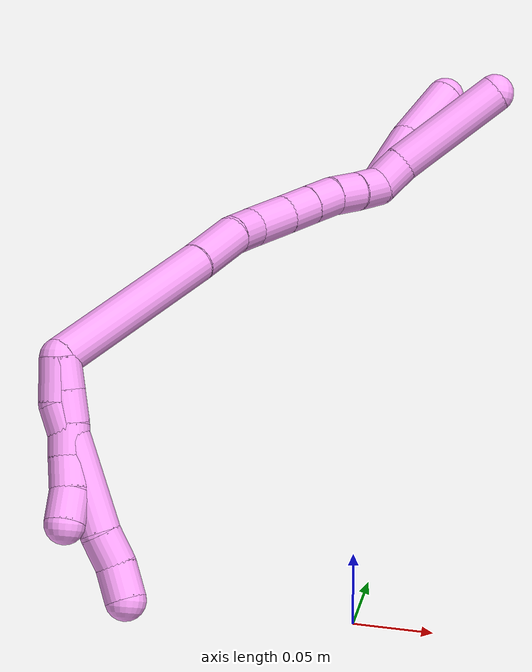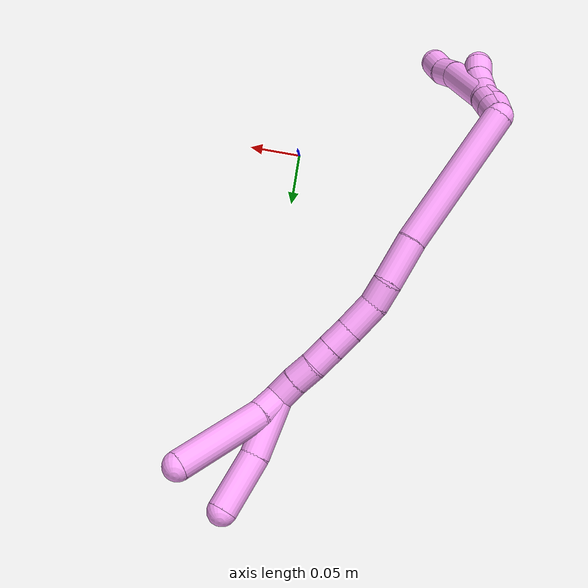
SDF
<sdf version="1.7">
 <world name="default">
  <model name="4">
   <static>0</static>
   <link name="4">
    <collision name="collision-cylinder-e_1_2_8">
     <pose>0.00077 0.000493 -0.013422 -3.1049 0.05724 -2.00172</pose>
     <geometry><cylinder><radius>0.0125</radius><length>0.026906</length></cylinder></geometry>
     <surface>
      <friction><ode><mu>1.16</mu><mu2>1.16</mu2><slip1>0</slip1><slip2>0</slip2></ode></friction>
      <contact><ode><kp>1e+06</kp><kd>1</kd><max_vel>0</max_vel><min_depth>0.001</min_depth></ode></contact>
     </surface>
    </collision>
    <visual name="visual-cylinder-e_1_2_8">
     <pose>0.00077 0.000493 -0.013422 -3.1049 0.05724 -2.00172</pose>
     <geometry><cylinder><radius>0.0125</radius><length>0.026906</length></cylinder></geometry>
     <material><ambient>1 0.65098 0.996078 1</ambient></material>
    </visual>
    <collision name="collision-cylinder-e_2_8_9">
     <pose>0.015117 0.008352 -0.064074 -2.94624 0.343584 -2.11339</pose>
     <geometry><cylinder><radius>0.0125</radius><length>0.080615</length></cylinder></geometry>
     <surface>
      <friction><ode><mu>1.16</mu><mu2>1.16</mu2><slip1>0</slip1><slip2>0</slip2></ode></friction>
      <contact><ode><kp>1e+06</kp><kd>1</kd><max_vel>0</max_vel><min_depth>0.001</min_depth></ode></contact>
     </surface>
    </collision>
    <visual name="visual-cylinder-e_2_8_9">
     <pose>0.015117 0.008352 -0.064074 -2.94624 0.343584 -2.11339</pose>
     <geometry><cylinder><radius>0.0125</radius><length>0.080615</length></cylinder></geometry>
     <material><ambient>1 0.65098 0.996078 1</ambient></material>
    </visual>
    <collision name="collision-cylinder-e_3_9_10">
     <pose>0.032624 0.019477 -0.110202 -2.74202 0.386261 -1.53602</pose>
     <geometry><cylinder><radius>0.0125</radius><length>0.020855</length></cylinder></geometry>
     <surface>
      <friction><ode><mu>1.16</mu><mu2>1.16</mu2><slip1>0</slip1><slip2>0</slip2></ode></friction>
      <contact><ode><kp>1e+06</kp><kd>1</kd><max_vel>0</max_vel><min_depth>0.001</min_depth></ode></contact>
     </surface>
    </collision>
    <visual name="visual-cylinder-e_3_9_10">
     <pose>0.032624 0.019477 -0.110202 -2.74202 0.386261 -1.53602</pose>
     <geometry><cylinder><radius>0.0125</radius><length>0.020855</length></cylinder></geometry>
     <material><ambient>1 0.65098 0.996078 1</ambient></material>
    </visual>
    <collision name="collision-cylinder-e_4_10_6">
     <pose>0.040216 0.024455 -0.129199 -3.02135 0.345664 -2.47751</pose>
     <geometry><cylinder><radius>0.0125</radius><length>0.021624</length></cylinder></geometry>
     <surface>
      <friction><ode><mu>1.16</mu><mu2>1.16</mu2><slip1>0</slip1><slip2>0</slip2></ode></friction>
      <contact><ode><kp>1e+06</kp><kd>1</kd><max_vel>0</max_vel><min_depth>0.001</min_depth></ode></contact>
     </surface>
    </collision>
    <visual name="visual-cylinder-e_4_10_6">
     <pose>0.040216 0.024455 -0.129199 -3.02135 0.345664 -2.47751</pose>
     <geometry><cylinder><radius>0.0125</radius><length>0.021624</length></cylinder></geometry>
     <material><ambient>1 0.65098 0.996078 1</ambient></material>
    </visual>
    <collision name="collision-cylinder-e_1_2_11">
     <pose>0.001843 0.001129 -0.009764 -3.02648 0.185349 -2.03167</pose>
     <geometry><cylinder><radius>0.0125</radius><length>0.02</length></cylinder></geometry>
     <surface>
      <friction><ode><mu>1.16</mu><mu2>1.16</mu2><slip1>0</slip1><slip2>0</slip2></ode></friction>
      <contact><ode><kp>1e+06</kp><kd>1</kd><max_vel>0</max_vel><min_depth>0.001</min_depth></ode></contact>
     </surface>
    </collision>
    <visual name="visual-cylinder-e_1_2_11">
     <pose>0.001843 0.001129 -0.009764 -3.02648 0.185349 -2.03167</pose>
     <geometry><cylinder><radius>0.0125</radius><length>0.02</length></cylinder></geometry>
     <material><ambient>1 0.65098 0.996078 1</ambient></material>
    </visual>
    <collision name="collision-cylinder-e_2_11_12">
     <pose>0.005597 0.003308 -0.029287 -3.03437 0.192347 -2.12632</pose>
     <geometry><cylinder><radius>0.0125</radius><length>0.02</length></cylinder></geometry>
     <surface>
      <friction><ode><mu>1.16</mu><mu2>1.16</mu2><slip1>0</slip1><slip2>0</slip2></ode></friction>
      <contact><ode><kp>1e+06</kp><kd>1</kd><max_vel>0</max_vel><min_depth>0.001</min_depth></ode></contact>
     </surface>
    </collision>
    <visual name="visual-cylinder-e_2_11_12">
     <pose>0.005597 0.003308 -0.029287 -3.03437 0.192347 -2.12632</pose>
     <geometry><cylinder><radius>0.0125</radius><length>0.02</length></cylinder></geometry>
     <material><ambient>1 0.65098 0.996078 1</ambient></material>
    </visual>
    <collision name="collision-cylinder-e_3_12_13">
     <pose>0.008641 0.004235 -0.048981 3.12914 0.113468 2.92328</pose>
     <geometry><cylinder><radius>0.0125</radius><length>0.02</length></cylinder></geometry>
     <surface>
      <friction><ode><mu>1.16</mu><mu2>1.16</mu2><slip1>0</slip1><slip2>0</slip2></ode></friction>
      <contact><ode><kp>1e+06</kp><kd>1</kd><max_vel>0</max_vel><min_depth>0.001</min_depth></ode></contact>
     </surface>
    </collision>
    <visual name="visual-cylinder-e_3_12_13">
     <pose>0.008641 0.004235 -0.048981 3.12914 0.113468 2.92328</pose>
     <geometry><cylinder><radius>0.0125</radius><length>0.02</length></cylinder></geometry>
     <material><ambient>1 0.65098 0.996078 1</ambient></material>
    </visual>
    <collision name="collision-cylinder-e_4_13_14">
     <pose>0.012047 0.002908 -0.068579 3.01767 0.229357 2.15346</pose>
     <geometry><cylinder><radius>0.0125</radius><length>0.02</length></cylinder></geometry>
     <surface>
      <friction><ode><mu>1.16</mu><mu2>1.16</mu2><slip1>0</slip1><slip2>0</slip2></ode></friction>
      <contact><ode><kp>1e+06</kp><kd>1</kd><max_vel>0</max_vel><min_depth>0.001</min_depth></ode></contact>
     </surface>
    </collision>
    <visual name="visual-cylinder-e_4_13_14">
     <pose>0.012047 0.002908 -0.068579 3.01767 0.229357 2.15346</pose>
     <geometry><cylinder><radius>0.0125</radius><length>0.02</length></cylinder></geometry>
     <material><ambient>1 0.65098 0.996078 1</ambient></material>
    </visual>
    <collision name="collision-cylinder-e_5_14_5">
     <pose>0.015015 -0.000779 -0.087904 2.89001 0.069454 0.536212</pose>
     <geometry><cylinder><radius>0.0125</radius><length>0.02</length></cylinder></geometry>
     <surface>
      <friction><ode><mu>1.16</mu><mu2>1.16</mu2><slip1>0</slip1><slip2>0</slip2></ode></friction>
      <contact><ode><kp>1e+06</kp><kd>1</kd><max_vel>0</max_vel><min_depth>0.001</min_depth></ode></contact>
     </surface>
    </collision>
    <visual name="visual-cylinder-e_5_14_5">
     <pose>0.015015 -0.000779 -0.087904 2.89001 0.069454 0.536212</pose>
     <geometry><cylinder><radius>0.0125</radius><length>0.02</length></cylinder></geometry>
     <material><ambient>1 0.65098 0.996078 1</ambient></material>
    </visual>
    <collision name="collision-cylinder-e_1_2_15">
     <pose>0.011616 0.052665 0.035144 -0.982345 0.18145 -0.097247</pose>
     <geometry><cylinder><radius>0.0125</radius><length>0.128742</length></cylinder></geometry>
     <surface>
      <friction><ode><mu>1.16</mu><mu2>1.16</mu2><slip1>0</slip1><slip2>0</slip2></ode></friction>
      <contact><ode><kp>1e+06</kp><kd>1</kd><max_vel>0</max_vel><min_depth>0.001</min_depth></ode></contact>
     </surface>
    </collision>
    <visual name="visual-cylinder-e_1_2_15">
     <pose>0.011616 0.052665 0.035144 -0.982345 0.18145 -0.097247</pose>
     <geometry><cylinder><radius>0.0125</radius><length>0.128742</length></cylinder></geometry>
     <material><ambient>1 0.65098 0.996078 1</ambient></material>
    </visual>
    <collision name="collision-cylinder-e_2_15_16">
     <pose>0.025099 0.122118 0.08103 -1.00161 0.093405 -0.051151</pose>
     <geometry><cylinder><radius>0.0125</radius><length>0.040037</length></cylinder></geometry>
     <surface>
      <friction><ode><mu>1.16</mu><mu2>1.16</mu2><slip1>0</slip1><slip2>0</slip2></ode></friction>
      <contact><ode><kp>1e+06</kp><kd>1</kd><max_vel>0</max_vel><min_depth>0.001</min_depth></ode></contact>
     </surface>
    </collision>
    <visual name="visual-cylinder-e_2_15_16">
     <pose>0.025099 0.122118 0.08103 -1.00161 0.093405 -0.051151</pose>
     <geometry><cylinder><radius>0.0125</radius><length>0.040037</length></cylinder></geometry>
     <material><ambient>1 0.65098 0.996078 1</ambient></material>
    </visual>
    <collision name="collision-cylinder-e_3_16_17">
     <pose>0.02766 0.148686 0.095526 -1.20429 0.066116 -0.045449</pose>
     <geometry><cylinder><radius>0.0125</radius><length>0.020996</length></cylinder></geometry>
     <surface>
      <friction><ode><mu>1.16</mu><mu2>1.16</mu2><slip1>0</slip1><slip2>0</slip2></ode></friction>
      <contact><ode><kp>1e+06</kp><kd>1</kd><max_vel>0</max_vel><min_depth>0.001</min_depth></ode></contact>
     </surface>
    </collision>
    <visual name="visual-cylinder-e_3_16_17">
     <pose>0.02766 0.148686 0.095526 -1.20429 0.066116 -0.045449</pose>
     <geometry><cylinder><radius>0.0125</radius><length>0.020996</length></cylinder></geometry>
     <material><ambient>1 0.65098 0.996078 1</ambient></material>
    </visual>
    <collision name="collision-cylinder-e_4_17_18">
     <pose>0.032675 0.170958 0.105113 -1.1339 0.303713 -0.194252</pose>
     <geometry><cylinder><radius>0.0125</radius><length>0.028898</length></cylinder></geometry>
     <surface>
      <friction><ode><mu>1.16</mu><mu2>1.16</mu2><slip1>0</slip1><slip2>0</slip2></ode></friction>
      <contact><ode><kp>1e+06</kp><kd>1</kd><max_vel>0</max_vel><min_depth>0.001</min_depth></ode></contact>
     </surface>
    </collision>
    <visual name="visual-cylinder-e_4_17_18">
     <pose>0.032675 0.170958 0.105113 -1.1339 0.303713 -0.194252</pose>
     <geometry><cylinder><radius>0.0125</radius><length>0.028898</length></cylinder></geometry>
     <material><ambient>1 0.65098 0.996078 1</ambient></material>
    </visual>
    <collision name="collision-cylinder-e_5_18_19">
     <pose>0.040603 0.192385 0.115405 -1.10804 0.346642 -0.215782</pose>
     <geometry><cylinder><radius>0.0125</radius><length>0.021232</length></cylinder></geometry>
     <surface>
      <friction><ode><mu>1.16</mu><mu2>1.16</mu2><slip1>0</slip1><slip2>0</slip2></ode></friction>
      <contact><ode><kp>1e+06</kp><kd>1</kd><max_vel>0</max_vel><min_depth>0.001</min_depth></ode></contact>
     </surface>
    </collision>
    <visual name="visual-cylinder-e_5_18_19">
     <pose>0.040603 0.192385 0.115405 -1.10804 0.346642 -0.215782</pose>
     <geometry><cylinder><radius>0.0125</radius><length>0.021232</length></cylinder></geometry>
     <material><ambient>1 0.65098 0.996078 1</ambient></material>
    </visual>
    <collision name="collision-cylinder-e_6_19_20">
     <pose>0.047546 0.209808 0.123994 -1.11774 0.339738 -0.213715</pose>
     <geometry><cylinder><radius>0.0125</radius><length>0.020025</length></cylinder></geometry>
     <surface>
      <friction><ode><mu>1.16</mu><mu2>1.16</mu2><slip1>0</slip1><slip2>0</slip2></ode></friction>
      <contact><ode><kp>1e+06</kp><kd>1</kd><max_vel>0</max_vel><min_depth>0.001</min_depth></ode></contact>
     </surface>
    </collision>
    <visual name="visual-cylinder-e_6_19_20">
     <pose>0.047546 0.209808 0.123994 -1.11774 0.339738 -0.213715</pose>
     <geometry><cylinder><radius>0.0125</radius><length>0.020025</length></cylinder></geometry>
     <material><ambient>1 0.65098 0.996078 1</ambient></material>
    </visual>
    <collision name="collision-cylinder-e_7_20_21">
     <pose>0.054589 0.227193 0.130917 -1.26682 0.378349 -0.279372</pose>
     <geometry><cylinder><radius>0.0125</radius><length>0.02007</length></cylinder></geometry>
     <surface>
      <friction><ode><mu>1.16</mu><mu2>1.16</mu2><slip1>0</slip1><slip2>0</slip2></ode></friction>
      <contact><ode><kp>1e+06</kp><kd>1</kd><max_vel>0</max_vel><min_depth>0.001</min_depth></ode></contact>
     </surface>
    </collision>
    <visual name="visual-cylinder-e_7_20_21">
     <pose>0.054589 0.227193 0.130917 -1.26682 0.378349 -0.279372</pose>
     <geometry><cylinder><radius>0.0125</radius><length>0.02007</length></cylinder></geometry>
     <material><ambient>1 0.65098 0.996078 1</ambient></material>
    </visual>
    <collision name="collision-cylinder-e_8_21_1">
     <pose>0.061243 0.24511 0.136867 -1.23391 0.299133 -0.212969</pose>
     <geometry><cylinder><radius>0.0125</radius><length>0.020001</length></cylinder></geometry>
     <surface>
      <friction><ode><mu>1.16</mu><mu2>1.16</mu2><slip1>0</slip1><slip2>0</slip2></ode></friction>
      <contact><ode><kp>1e+06</kp><kd>1</kd><max_vel>0</max_vel><min_depth>0.001</min_depth></ode></contact>
     </surface>
    </collision>
    <visual name="visual-cylinder-e_8_21_1">
     <pose>0.061243 0.24511 0.136867 -1.23391 0.299133 -0.212969</pose>
     <geometry><cylinder><radius>0.0125</radius><length>0.020001</length></cylinder></geometry>
     <material><ambient>1 0.65098 0.996078 1</ambient></material>
    </visual>
    <collision name="collision-cylinder-e_1_1_22">
     <pose>0.063649 0.272372 0.157633 -0.803148 -0.021329 0.009058</pose>
     <geometry><cylinder><radius>0.0125</radius><length>0.050719</length></cylinder></geometry>
     <surface>
      <friction><ode><mu>1.16</mu><mu2>1.16</mu2><slip1>0</slip1><slip2>0</slip2></ode></friction>
      <contact><ode><kp>1e+06</kp><kd>1</kd><max_vel>0</max_vel><min_depth>0.001</min_depth></ode></contact>
     </surface>
    </collision>
    <visual name="visual-cylinder-e_1_1_22">
     <pose>0.063649 0.272372 0.157633 -0.803148 -0.021329 0.009058</pose>
     <geometry><cylinder><radius>0.0125</radius><length>0.050719</length></cylinder></geometry>
     <material><ambient>1 0.65098 0.996078 1</ambient></material>
    </visual>
    <collision name="collision-cylinder-e_2_22_4">
     <pose>0.066657 0.307559 0.192774 -0.768277 0.144526 -0.058506</pose>
     <geometry><cylinder><radius>0.0125</radius><length>0.049281</length></cylinder></geometry>
     <surface>
      <friction><ode><mu>1.16</mu><mu2>1.16</mu2><slip1>0</slip1><slip2>0</slip2></ode></friction>
      <contact><ode><kp>1e+06</kp><kd>1</kd><max_vel>0</max_vel><min_depth>0.001</min_depth></ode></contact>
     </surface>
    </collision>
    <visual name="visual-cylinder-e_2_22_4">
     <pose>0.066657 0.307559 0.192774 -0.768277 0.144526 -0.058506</pose>
     <geometry><cylinder><radius>0.0125</radius><length>0.049281</length></cylinder></geometry>
     <material><ambient>1 0.65098 0.996078 1</ambient></material>
    </visual>
    <collision name="collision-cylinder-e_1_1_23">
     <pose>0.068939 0.259424 0.148122 -0.579258 0.456386 -0.138198</pose>
     <geometry><cylinder><radius>0.0125</radius><length>0.021553</length></cylinder></geometry>
     <surface>
      <friction><ode><mu>1.16</mu><mu2>1.16</mu2><slip1>0</slip1><slip2>0</slip2></ode></friction>
      <contact><ode><kp>1e+06</kp><kd>1</kd><max_vel>0</max_vel><min_depth>0.001</min_depth></ode></contact>
     </surface>
    </collision>
    <visual name="visual-cylinder-e_1_1_23">
     <pose>0.068939 0.259424 0.148122 -0.579258 0.456386 -0.138198</pose>
     <geometry><cylinder><radius>0.0125</radius><length>0.021553</length></cylinder></geometry>
     <material><ambient>1 0.65098 0.996078 1</ambient></material>
    </visual>
    <collision name="collision-cylinder-e_2_23_3">
     <pose>0.096386 0.283051 0.182434 -0.610202 0.617087 -0.200083</pose>
     <geometry><cylinder><radius>0.0125</radius><length>0.078447</length></cylinder></geometry>
     <surface>
      <friction><ode><mu>1.16</mu><mu2>1.16</mu2><slip1>0</slip1><slip2>0</slip2></ode></friction>
      <contact><ode><kp>1e+06</kp><kd>1</kd><max_vel>0</max_vel><min_depth>0.001</min_depth></ode></contact>
     </surface>
    </collision>
    <visual name="visual-cylinder-e_2_23_3">
     <pose>0.096386 0.283051 0.182434 -0.610202 0.617087 -0.200083</pose>
     <geometry><cylinder><radius>0.0125</radius><length>0.078447</length></cylinder></geometry>
     <material><ambient>1 0.65098 0.996078 1</ambient></material>
    </visual>
    <collision name="collision-sphere-3">
     <pose>0.119083 0.301382 0.20865 0 -0 0</pose>
     <geometry><sphere><radius>0.0125</radius></sphere></geometry>
     <surface>
      <friction><ode><mu>1.16</mu><mu2>1.16</mu2><slip1>0</slip1><slip2>0</slip2></ode></friction>
      <contact><ode><kp>1e+06</kp><kd>1</kd><max_vel>0</max_vel><min_depth>0.001</min_depth></ode></contact>
     </surface>
    </collision>
    <visual name="visual-sphere-3">
     <pose>0.119083 0.301382 0.20865 0 -0 0</pose>
     <geometry><sphere><radius>0.0125</radius></sphere></geometry>
     <material><ambient>1 0.65098 0.996078 1</ambient></material>
    </visual>
    <collision name="collision-sphere-23">
     <pose>0.073689 0.26472 0.156217 0 -0 0</pose>
     <geometry><sphere><radius>0.0125</radius></sphere></geometry>
     <surface>
      <friction><ode><mu>1.16</mu><mu2>1.16</mu2><slip1>0</slip1><slip2>0</slip2></ode></friction>
      <contact><ode><kp>1e+06</kp><kd>1</kd><max_vel>0</max_vel><min_depth>0.001</min_depth></ode></contact>
     </surface>
    </collision>
    <visual name="visual-sphere-23">
     <pose>0.073689 0.26472 0.156217 0 -0 0</pose>
     <geometry><sphere><radius>0.0125</radius></sphere></geometry>
     <material><ambient>1 0.65098 0.996078 1</ambient></material>
    </visual>
    <collision name="collision-sphere-4">
     <pose>0.070206 0.324503 0.210309 0 -0 0</pose>
     <geometry><sphere><radius>0.0125</radius></sphere></geometry>
     <surface>
      <friction><ode><mu>1.16</mu><mu2>1.16</mu2><slip1>0</slip1><slip2>0</slip2></ode></friction>
      <contact><ode><kp>1e+06</kp><kd>1</kd><max_vel>0</max_vel><min_depth>0.001</min_depth></ode></contact>
     </surface>
    </collision>
    <visual name="visual-sphere-4">
     <pose>0.070206 0.324503 0.210309 0 -0 0</pose>
     <geometry><sphere><radius>0.0125</radius></sphere></geometry>
     <material><ambient>1 0.65098 0.996078 1</ambient></material>
    </visual>
    <collision name="collision-sphere-22">
     <pose>0.063108 0.290615 0.17524 0 -0 0</pose>
     <geometry><sphere><radius>0.0125</radius></sphere></geometry>
     <surface>
      <friction><ode><mu>1.16</mu><mu2>1.16</mu2><slip1>0</slip1><slip2>0</slip2></ode></friction>
      <contact><ode><kp>1e+06</kp><kd>1</kd><max_vel>0</max_vel><min_depth>0.001</min_depth></ode></contact>
     </surface>
    </collision>
    <visual name="visual-sphere-22">
     <pose>0.063108 0.290615 0.17524 0 -0 0</pose>
     <geometry><sphere><radius>0.0125</radius></sphere></geometry>
     <material><ambient>1 0.65098 0.996078 1</ambient></material>
    </visual>
    <collision name="collision-sphere-1">
     <pose>0.06419 0.254129 0.140026 0 -0 0</pose>
     <geometry><sphere><radius>0.0125</radius></sphere></geometry>
     <surface>
      <friction><ode><mu>1.16</mu><mu2>1.16</mu2><slip1>0</slip1><slip2>0</slip2></ode></friction>
      <contact><ode><kp>1e+06</kp><kd>1</kd><max_vel>0</max_vel><min_depth>0.001</min_depth></ode></contact>
     </surface>
    </collision>
    <visual name="visual-sphere-1">
     <pose>0.06419 0.254129 0.140026 0 -0 0</pose>
     <geometry><sphere><radius>0.0125</radius></sphere></geometry>
     <material><ambient>1 0.65098 0.996078 1</ambient></material>
    </visual>
    <collision name="collision-sphere-21">
     <pose>0.058296 0.236091 0.133709 0 -0 0</pose>
     <geometry><sphere><radius>0.0125</radius></sphere></geometry>
     <surface>
      <friction><ode><mu>1.16</mu><mu2>1.16</mu2><slip1>0</slip1><slip2>0</slip2></ode></friction>
      <contact><ode><kp>1e+06</kp><kd>1</kd><max_vel>0</max_vel><min_depth>0.001</min_depth></ode></contact>
     </surface>
    </collision>
    <visual name="visual-sphere-21">
     <pose>0.058296 0.236091 0.133709 0 -0 0</pose>
     <geometry><sphere><radius>0.0125</radius></sphere></geometry>
     <material><ambient>1 0.65098 0.996078 1</ambient></material>
    </visual>
    <collision name="collision-sphere-11">
     <pose>0.003686 0.002258 -0.019527 0 -0 0</pose>
     <geometry><sphere><radius>0.0125</radius></sphere></geometry>
     <surface>
      <friction><ode><mu>1.16</mu><mu2>1.16</mu2><slip1>0</slip1><slip2>0</slip2></ode></friction>
      <contact><ode><kp>1e+06</kp><kd>1</kd><max_vel>0</max_vel><min_depth>0.001</min_depth></ode></contact>
     </surface>
    </collision>
    <visual name="visual-sphere-11">
     <pose>0.003686 0.002258 -0.019527 0 -0 0</pose>
     <geometry><sphere><radius>0.0125</radius></sphere></geometry>
     <material><ambient>1 0.65098 0.996078 1</ambient></material>
    </visual>
    <collision name="collision-sphere-6">
     <pose>0.043879 0.025675 -0.139298 0 -0 0</pose>
     <geometry><sphere><radius>0.0125</radius></sphere></geometry>
     <surface>
      <friction><ode><mu>1.16</mu><mu2>1.16</mu2><slip1>0</slip1><slip2>0</slip2></ode></friction>
      <contact><ode><kp>1e+06</kp><kd>1</kd><max_vel>0</max_vel><min_depth>0.001</min_depth></ode></contact>
     </surface>
    </collision>
    <visual name="visual-sphere-6">
     <pose>0.043879 0.025675 -0.139298 0 -0 0</pose>
     <geometry><sphere><radius>0.0125</radius></sphere></geometry>
     <material><ambient>1 0.65098 0.996078 1</ambient></material>
    </visual>
    <collision name="collision-sphere-10">
     <pose>0.036552 0.023234 -0.1191 0 -0 0</pose>
     <geometry><sphere><radius>0.0125</radius></sphere></geometry>
     <surface>
      <friction><ode><mu>1.16</mu><mu2>1.16</mu2><slip1>0</slip1><slip2>0</slip2></ode></friction>
      <contact><ode><kp>1e+06</kp><kd>1</kd><max_vel>0</max_vel><min_depth>0.001</min_depth></ode></contact>
     </surface>
    </collision>
    <visual name="visual-sphere-10">
     <pose>0.036552 0.023234 -0.1191 0 -0 0</pose>
     <geometry><sphere><radius>0.0125</radius></sphere></geometry>
     <material><ambient>1 0.65098 0.996078 1</ambient></material>
    </visual>
    <collision name="collision-sphere-9">
     <pose>0.028696 0.015719 -0.101303 0 -0 0</pose>
     <geometry><sphere><radius>0.0125</radius></sphere></geometry>
     <surface>
      <friction><ode><mu>1.16</mu><mu2>1.16</mu2><slip1>0</slip1><slip2>0</slip2></ode></friction>
      <contact><ode><kp>1e+06</kp><kd>1</kd><max_vel>0</max_vel><min_depth>0.001</min_depth></ode></contact>
     </surface>
    </collision>
    <visual name="visual-sphere-9">
     <pose>0.028696 0.015719 -0.101303 0 -0 0</pose>
     <geometry><sphere><radius>0.0125</radius></sphere></geometry>
     <material><ambient>1 0.65098 0.996078 1</ambient></material>
    </visual>
    <collision name="collision-sphere-2">
     <geometry><sphere><radius>0.0125</radius></sphere></geometry>
     <surface>
      <friction><ode><mu>1.16</mu><mu2>1.16</mu2><slip1>0</slip1><slip2>0</slip2></ode></friction>
      <contact><ode><kp>1e+06</kp><kd>1</kd><max_vel>0</max_vel><min_depth>0.001</min_depth></ode></contact>
     </surface>
    </collision>
    <visual name="visual-sphere-2">
     <geometry><sphere><radius>0.0125</radius></sphere></geometry>
     <material><ambient>1 0.65098 0.996078 1</ambient></material>
    </visual>
    <collision name="collision-sphere-19">
     <pose>0.044209 0.20132 0.119862 0 -0 0</pose>
     <geometry><sphere><radius>0.0125</radius></sphere></geometry>
     <surface>
      <friction><ode><mu>1.16</mu><mu2>1.16</mu2><slip1>0</slip1><slip2>0</slip2></ode></friction>
      <contact><ode><kp>1e+06</kp><kd>1</kd><max_vel>0</max_vel><min_depth>0.001</min_depth></ode></contact>
     </surface>
    </collision>
    <visual name="visual-sphere-19">
     <pose>0.044209 0.20132 0.119862 0 -0 0</pose>
     <geometry><sphere><radius>0.0125</radius></sphere></geometry>
     <material><ambient>1 0.65098 0.996078 1</ambient></material>
    </visual>
    <collision name="collision-sphere-8">
     <pose>0.001539 0.000985 -0.026844 0 -0 0</pose>
     <geometry><sphere><radius>0.0125</radius></sphere></geometry>
     <surface>
      <friction><ode><mu>1.16</mu><mu2>1.16</mu2><slip1>0</slip1><slip2>0</slip2></ode></friction>
      <contact><ode><kp>1e+06</kp><kd>1</kd><max_vel>0</max_vel><min_depth>0.001</min_depth></ode></contact>
     </surface>
    </collision>
    <visual name="visual-sphere-8">
     <pose>0.001539 0.000985 -0.026844 0 -0 0</pose>
     <geometry><sphere><radius>0.0125</radius></sphere></geometry>
     <material><ambient>1 0.65098 0.996078 1</ambient></material>
    </visual>
    <collision name="collision-sphere-12">
     <pose>0.007509 0.004359 -0.039046 0 -0 0</pose>
     <geometry><sphere><radius>0.0125</radius></sphere></geometry>
     <surface>
      <friction><ode><mu>1.16</mu><mu2>1.16</mu2><slip1>0</slip1><slip2>0</slip2></ode></friction>
      <contact><ode><kp>1e+06</kp><kd>1</kd><max_vel>0</max_vel><min_depth>0.001</min_depth></ode></contact>
     </surface>
    </collision>
    <visual name="visual-sphere-12">
     <pose>0.007509 0.004359 -0.039046 0 -0 0</pose>
     <geometry><sphere><radius>0.0125</radius></sphere></geometry>
     <material><ambient>1 0.65098 0.996078 1</ambient></material>
    </visual>
    <collision name="collision-sphere-13">
     <pose>0.009774 0.004111 -0.058916 0 -0 0</pose>
     <geometry><sphere><radius>0.0125</radius></sphere></geometry>
     <surface>
      <friction><ode><mu>1.16</mu><mu2>1.16</mu2><slip1>0</slip1><slip2>0</slip2></ode></friction>
      <contact><ode><kp>1e+06</kp><kd>1</kd><max_vel>0</max_vel><min_depth>0.001</min_depth></ode></contact>
     </surface>
    </collision>
    <visual name="visual-sphere-13">
     <pose>0.009774 0.004111 -0.058916 0 -0 0</pose>
     <geometry><sphere><radius>0.0125</radius></sphere></geometry>
     <material><ambient>1 0.65098 0.996078 1</ambient></material>
    </visual>
    <collision name="collision-sphere-14">
     <pose>0.014321 0.001704 -0.078243 0 -0 0</pose>
     <geometry><sphere><radius>0.0125</radius></sphere></geometry>
     <surface>
      <friction><ode><mu>1.16</mu><mu2>1.16</mu2><slip1>0</slip1><slip2>0</slip2></ode></friction>
      <contact><ode><kp>1e+06</kp><kd>1</kd><max_vel>0</max_vel><min_depth>0.001</min_depth></ode></contact>
     </surface>
    </collision>
    <visual name="visual-sphere-14">
     <pose>0.014321 0.001704 -0.078243 0 -0 0</pose>
     <geometry><sphere><radius>0.0125</radius></sphere></geometry>
     <material><ambient>1 0.65098 0.996078 1</ambient></material>
    </visual>
    <collision name="collision-sphere-5">
     <pose>0.015709 -0.003263 -0.097566 0 -0 0</pose>
     <geometry><sphere><radius>0.0125</radius></sphere></geometry>
     <surface>
      <friction><ode><mu>1.16</mu><mu2>1.16</mu2><slip1>0</slip1><slip2>0</slip2></ode></friction>
      <contact><ode><kp>1e+06</kp><kd>1</kd><max_vel>0</max_vel><min_depth>0.001</min_depth></ode></contact>
     </surface>
    </collision>
    <visual name="visual-sphere-5">
     <pose>0.015709 -0.003263 -0.097566 0 -0 0</pose>
     <geometry><sphere><radius>0.0125</radius></sphere></geometry>
     <material><ambient>1 0.65098 0.996078 1</ambient></material>
    </visual>
    <collision name="collision-sphere-15">
     <pose>0.023232 0.105329 0.070288 0 -0 0</pose>
     <geometry><sphere><radius>0.0125</radius></sphere></geometry>
     <surface>
      <friction><ode><mu>1.16</mu><mu2>1.16</mu2><slip1>0</slip1><slip2>0</slip2></ode></friction>
      <contact><ode><kp>1e+06</kp><kd>1</kd><max_vel>0</max_vel><min_depth>0.001</min_depth></ode></contact>
     </surface>
    </collision>
    <visual name="visual-sphere-15">
     <pose>0.023232 0.105329 0.070288 0 -0 0</pose>
     <geometry><sphere><radius>0.0125</radius></sphere></geometry>
     <material><ambient>1 0.65098 0.996078 1</ambient></material>
    </visual>
    <collision name="collision-sphere-16">
     <pose>0.026966 0.138907 0.091772 0 -0 0</pose>
     <geometry><sphere><radius>0.0125</radius></sphere></geometry>
     <surface>
      <friction><ode><mu>1.16</mu><mu2>1.16</mu2><slip1>0</slip1><slip2>0</slip2></ode></friction>
      <contact><ode><kp>1e+06</kp><kd>1</kd><max_vel>0</max_vel><min_depth>0.001</min_depth></ode></contact>
     </surface>
    </collision>
    <visual name="visual-sphere-16">
     <pose>0.026966 0.138907 0.091772 0 -0 0</pose>
     <geometry><sphere><radius>0.0125</radius></sphere></geometry>
     <material><ambient>1 0.65098 0.996078 1</ambient></material>
    </visual>
    <collision name="collision-sphere-17">
     <pose>0.028354 0.158466 0.099279 0 -0 0</pose>
     <geometry><sphere><radius>0.0125</radius></sphere></geometry>
     <surface>
      <friction><ode><mu>1.16</mu><mu2>1.16</mu2><slip1>0</slip1><slip2>0</slip2></ode></friction>
      <contact><ode><kp>1e+06</kp><kd>1</kd><max_vel>0</max_vel><min_depth>0.001</min_depth></ode></contact>
     </surface>
    </collision>
    <visual name="visual-sphere-17">
     <pose>0.028354 0.158466 0.099279 0 -0 0</pose>
     <geometry><sphere><radius>0.0125</radius></sphere></geometry>
     <material><ambient>1 0.65098 0.996078 1</ambient></material>
    </visual>
    <collision name="collision-sphere-18">
     <pose>0.036996 0.183451 0.110947 0 -0 0</pose>
     <geometry><sphere><radius>0.0125</radius></sphere></geometry>
     <surface>
      <friction><ode><mu>1.16</mu><mu2>1.16</mu2><slip1>0</slip1><slip2>0</slip2></ode></friction>
      <contact><ode><kp>1e+06</kp><kd>1</kd><max_vel>0</max_vel><min_depth>0.001</min_depth></ode></contact>
     </surface>
    </collision>
    <visual name="visual-sphere-18">
     <pose>0.036996 0.183451 0.110947 0 -0 0</pose>
     <geometry><sphere><radius>0.0125</radius></sphere></geometry>
     <material><ambient>1 0.65098 0.996078 1</ambient></material>
    </visual>
    <collision name="collision-sphere-20">
     <pose>0.050882 0.218295 0.128126 0 -0 0</pose>
     <geometry><sphere><radius>0.0125</radius></sphere></geometry>
     <surface>
      <friction><ode><mu>1.16</mu><mu2>1.16</mu2><slip1>0</slip1><slip2>0</slip2></ode></friction>
      <contact><ode><kp>1e+06</kp><kd>1</kd><max_vel>0</max_vel><min_depth>0.001</min_depth></ode></contact>
     </surface>
    </collision>
    <visual name="visual-sphere-20">
     <pose>0.050882 0.218295 0.128126 0 -0 0</pose>
     <geometry><sphere><radius>0.0125</radius></sphere></geometry>
     <material><ambient>1 0.65098 0.996078 1</ambient></material>
    </visual>
    <inertial>
     <pose>0.036497 0.128113 0.0568 0 -0 0</pose>
     <mass>0.75</mass>
     <inertia>
      <ixx>0.000173</ixx>
      <ixy>0</ixy>
      <ixz>0</ixz>
      <iyy>0.000161</iyy>
      <iyz>0</iyz>
      <izz>-0.000291</izz>
     </inertia>
    </inertial>
   </link>
   <pose>-0.17102 -0.03647 0.184868 -0.521283 -0.203353 -0.281738</pose>
  </model>
 </world>
</sdf>
